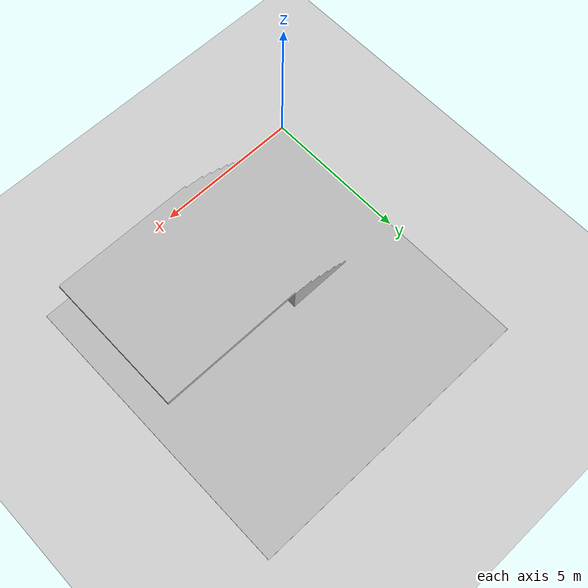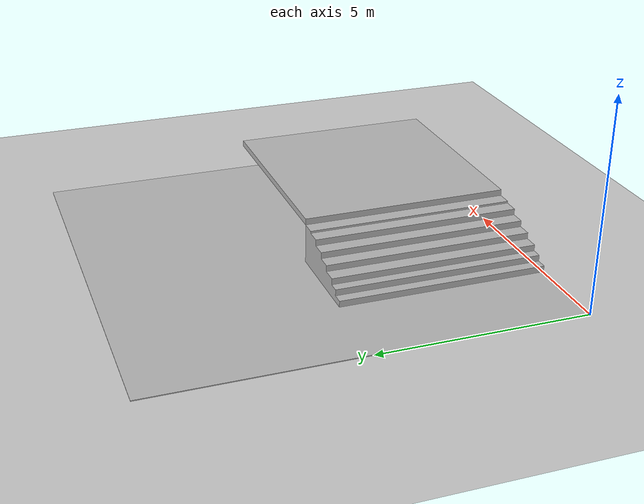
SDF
<?xml version="1.0" ?>
<sdf version='1.6'>
  <world name='default'>
    <include>
      <uri>model://ground_plane</uri>
    </include>
    <include>
      <uri>model://sun</uri>
    </include>

    <model name="mesh_terrain">
      <pose>0 0 0.0  0 0 0</pose>
      <static>true</static>
      <link name="body">
        <visual name="visual">
          <geometry>
            <mesh><uri>model:///stairs/stairs.stl</uri></mesh>
          </geometry>
        </visual>
        <collision name="collision">
          <geometry>
            <mesh><uri>model:///stairs/stairs.stl</uri></mesh>
          </geometry>
          <surface>
            <friction>
              <ode>
                <mu>100</mu>
                <mu2>100</mu2>
              </ode>
            </friction>
          </surface>
        </collision>
      </link>
    </model>
  </world>
</sdf>
